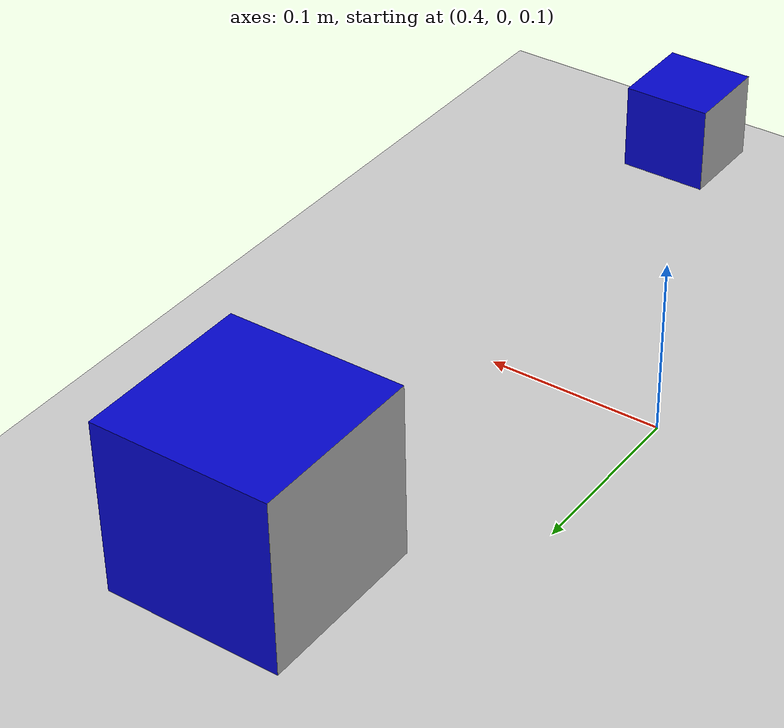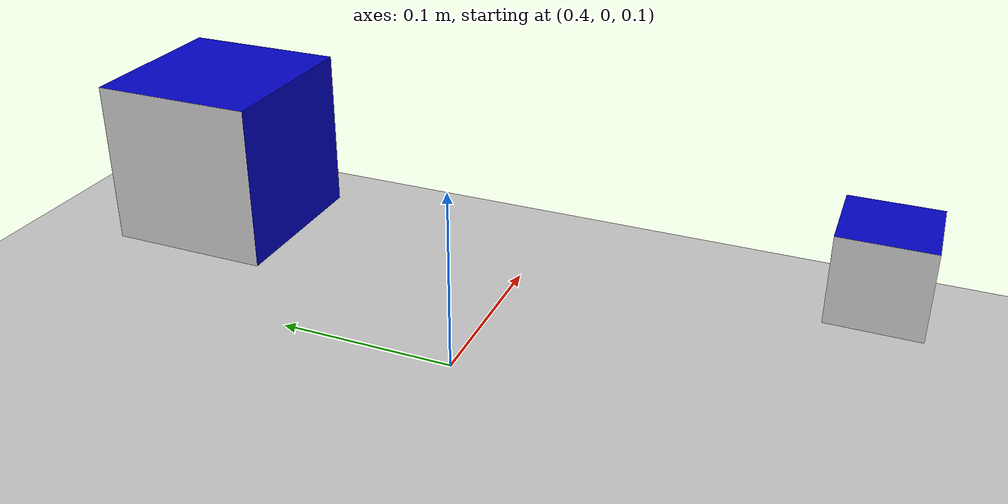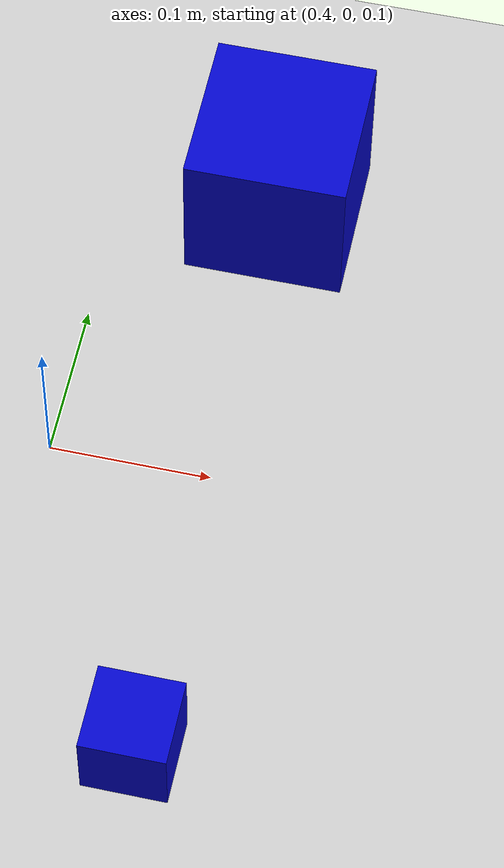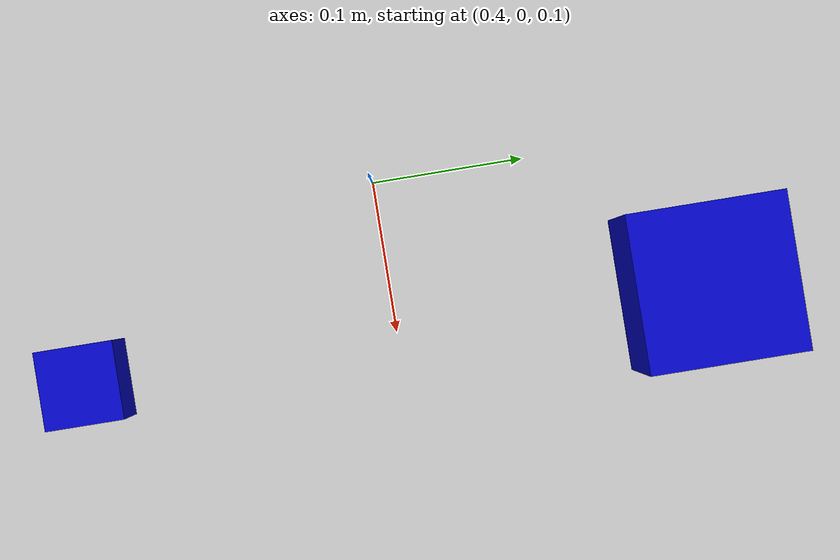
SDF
<?xml version="1.0"?>
<sdf version="1.6">
  <world name="default">
    <include>
      <uri>model://ground_plane</uri>
    </include>
    <include>
      <uri>model://sun</uri>
    </include>

    <model name="cubo_aruco">
      <pose>0.5 0.2 0.15 0 0 3.14</pose>
      <static>1</static>
      <link name="body">
        <inertial>
          <mass>0.1</mass>
        </inertial>
        <visual name="visual">
          <geometry>
            <mesh>
              <uri>model://cubo_test.dae</uri>
              <scale>0.05 0.05 0.05</scale>
            </mesh>
          </geometry>
        </visual>
      </link>
    </model>

    <model name="cubo2_aruco">
      <pose>0.5 -0.2 0.15 0 0 3.14</pose>
      <static>1</static>
      <link name="body">
        <inertial>
          <mass>0.1</mass>
        </inertial>
        <visual name="visual">
          <geometry>
            <mesh>
              <uri>model://cubo2_test.dae</uri>
              <scale>0.05 0.05 0.05</scale>
            </mesh>
          </geometry>
        </visual>
      </link>
    </model>

  </world>
</sdf>
